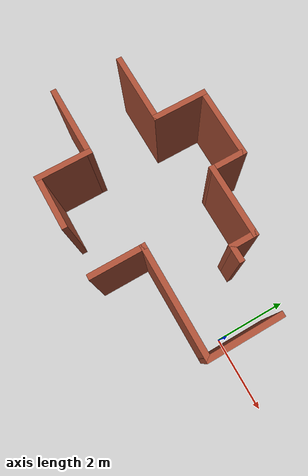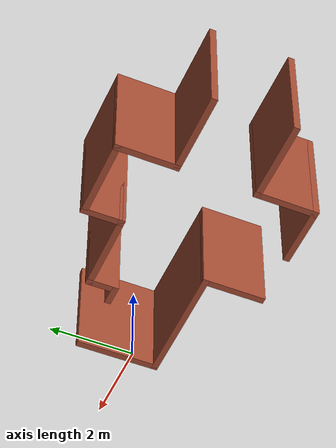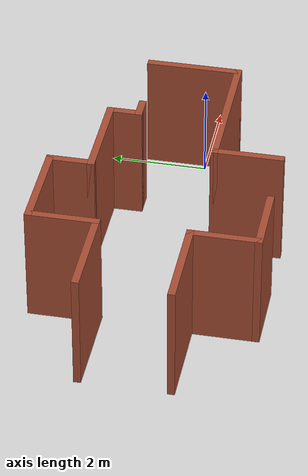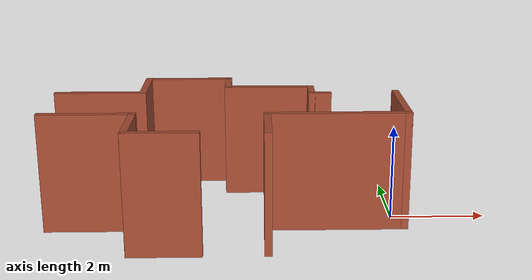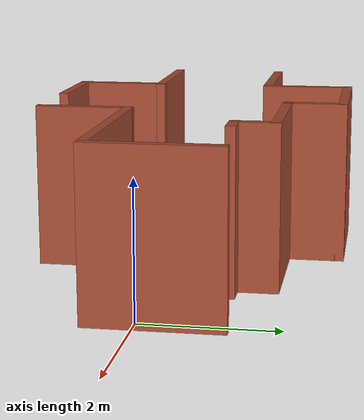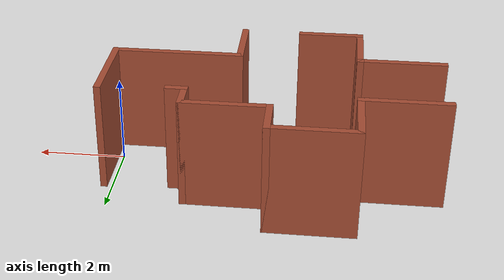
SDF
<?xml version='1.0'?>
<sdf version='1.7'>
  <model name='Test_building04'>
    <pose>-3.5103 0.279952 0 0 -0 0</pose>
    <link name='Wall_43'>
      <collision name='Wall_43_Collision'>
        <geometry>
          <box>
            <size>1.5 0.15 2.5</size>
          </box>
        </geometry>
        <pose>0 0 1.25 0 -0 0</pose>
      </collision>
      <visual name='Wall_43_Visual'>
        <pose>0 0 1.25 0 -0 0</pose>
        <geometry>
          <box>
            <size>1.5 0.15 2.5</size>
          </box>
        </geometry>
        <material>
          <script>
            <uri>file://media/materials/scripts/gazebo.material</uri>
            <name>Gazebo/Bricks</name>
          </script>
          <ambient>1 1 1 1</ambient>
        </material>
        <meta>
          <layer>0</layer>
        </meta>
      </visual>
      <pose>-1.175 -2.275 0 0 -0 0</pose>
    </link>
    <link name='Wall_45'>
      <collision name='Wall_45_Collision'>
        <geometry>
          <box>
            <size>1.5 0.15 2.5</size>
          </box>
        </geometry>
        <pose>0 0 1.25 0 -0 0</pose>
      </collision>
      <visual name='Wall_45_Visual'>
        <pose>0 0 1.25 0 -0 0</pose>
        <geometry>
          <box>
            <size>1.5 0.15 2.5</size>
          </box>
        </geometry>
        <material>
          <script>
            <uri>file://media/materials/scripts/gazebo.material</uri>
            <name>Gazebo/Bricks</name>
          </script>
          <ambient>1 1 1 1</ambient>
        </material>
        <meta>
          <layer>0</layer>
        </meta>
      </visual>
      <pose>-1.85 -1.6 0 0 -0 1.5708</pose>
    </link>
    <link name='Wall_47'>
      <collision name='Wall_47_Collision'>
        <geometry>
          <box>
            <size>1.5 0.15 2.5</size>
          </box>
        </geometry>
        <pose>0 0 1.25 0 -0 0</pose>
      </collision>
      <visual name='Wall_47_Visual'>
        <pose>0 0 1.25 0 -0 0</pose>
        <geometry>
          <box>
            <size>1.5 0.15 2.5</size>
          </box>
        </geometry>
        <material>
          <script>
            <uri>file://media/materials/scripts/gazebo.material</uri>
            <name>Gazebo/Bricks</name>
          </script>
          <ambient>1 1 1 1</ambient>
        </material>
        <meta>
          <layer>0</layer>
        </meta>
      </visual>
      <pose>-1.85 1.6 0 0 -0 1.5708</pose>
    </link>
    <link name='Wall_48'>
      <collision name='Wall_48_Collision'>
        <geometry>
          <box>
            <size>2 0.15 2.5</size>
          </box>
        </geometry>
        <pose>0 0 1.25 0 -0 0</pose>
      </collision>
      <visual name='Wall_48_Visual'>
        <pose>0 0 1.25 0 -0 0</pose>
        <geometry>
          <box>
            <size>2 0.15 2.5</size>
          </box>
        </geometry>
        <material>
          <script>
            <uri>file://media/materials/scripts/gazebo.material</uri>
            <name>Gazebo/Bricks</name>
          </script>
          <ambient>1 1 1 1</ambient>
        </material>
        <meta>
          <layer>0</layer>
        </meta>
      </visual>
      <pose>-0.925 2.275 0 0 -0 0</pose>
    </link>
    <link name='Wall_49'>
      <collision name='Wall_49_Collision'>
        <geometry>
          <box>
            <size>1 0.15 2.5</size>
          </box>
        </geometry>
        <pose>0 0 1.25 0 -0 0</pose>
      </collision>
      <visual name='Wall_49_Visual'>
        <pose>0 0 1.25 0 -0 0</pose>
        <geometry>
          <box>
            <size>1 0.15 2.5</size>
          </box>
        </geometry>
        <material>
          <script>
            <uri>file://media/materials/scripts/gazebo.material</uri>
            <name>Gazebo/Bricks</name>
          </script>
          <ambient>1 1 1 1</ambient>
        </material>
        <meta>
          <layer>0</layer>
        </meta>
      </visual>
      <pose>-0 1.85 0 0 -0 -1.5708</pose>
    </link>
    <link name='Wall_51'>
      <collision name='Wall_51_Collision'>
        <geometry>
          <box>
            <size>0.75 0.15 2.5</size>
          </box>
        </geometry>
        <pose>0 0 1.25 0 -0 0</pose>
      </collision>
      <visual name='Wall_51_Visual'>
        <pose>0 0 1.25 0 -0 0</pose>
        <geometry>
          <box>
            <size>0.75 0.15 2.5</size>
          </box>
        </geometry>
        <material>
          <script>
            <uri>file://media/materials/scripts/gazebo.material</uri>
            <name>Gazebo/Bricks</name>
          </script>
          <ambient>1 1 1 1</ambient>
        </material>
        <meta>
          <layer>0</layer>
        </meta>
      </visual>
      <pose>1.85 1.125 0 0 -0 -1.5708</pose>
    </link>
    <link name='Wall_54'>
      <collision name='Wall_54_Collision'>
        <geometry>
          <box>
            <size>1.5 0.15 2.5</size>
          </box>
        </geometry>
        <pose>0 0 1.25 0 -0 0</pose>
      </collision>
      <visual name='Wall_54_Visual'>
        <pose>0 0 1.25 0 -0 0</pose>
        <geometry>
          <box>
            <size>1.5 0.15 2.5</size>
          </box>
        </geometry>
        <material>
          <script>
            <uri>file://media/materials/scripts/gazebo.material</uri>
            <name>Gazebo/Bricks</name>
          </script>
          <ambient>1 1 1 1</ambient>
        </material>
        <meta>
          <layer>0</layer>
        </meta>
      </visual>
      <pose>0.85 -1.6 0 0 -0 1.5708</pose>
    </link>
    <link name='Wall_55'>
      <collision name='Wall_55_Collision'>
        <geometry>
          <box>
            <size>3 0.15 2.5</size>
          </box>
        </geometry>
        <pose>0 0 1.25 0 -0 0</pose>
      </collision>
      <visual name='Wall_55_Visual'>
        <pose>0 0 1.25 0 -0 0</pose>
        <geometry>
          <box>
            <size>3 0.15 2.5</size>
          </box>
        </geometry>
        <material>
          <script>
            <uri>file://media/materials/scripts/gazebo.material</uri>
            <name>Gazebo/Bricks</name>
          </script>
          <ambient>1 1 1 1</ambient>
        </material>
        <meta>
          <layer>0</layer>
        </meta>
      </visual>
      <pose>2.275 -0.925 0 0 -0 0</pose>
    </link>
    <link name='Wall_56'>
      <collision name='Wall_56_Collision'>
        <geometry>
          <box>
            <size>2 0.15 2.5</size>
          </box>
        </geometry>
        <pose>0 0 1.25 0 -0 0</pose>
      </collision>
      <visual name='Wall_56_Visual'>
        <pose>0 0 1.25 0 -0 0</pose>
        <geometry>
          <box>
            <size>2 0.15 2.5</size>
          </box>
        </geometry>
        <material>
          <script>
            <uri>file://media/materials/scripts/gazebo.material</uri>
            <name>Gazebo/Bricks</name>
          </script>
          <ambient>1 1 1 1</ambient>
        </material>
        <meta>
          <layer>0</layer>
        </meta>
      </visual>
      <pose>3.7 0 0 0 -0 1.5708</pose>
    </link>
    <link name='Wall_58'>
      <collision name='Wall_58_Collision'>
        <geometry>
          <box>
            <size>2 0.15 2.5</size>
          </box>
        </geometry>
        <pose>0 0 1.25 0 -0 0</pose>
      </collision>
      <visual name='Wall_58_Visual'>
        <pose>0 0 1.25 0 -0 0</pose>
        <geometry>
          <box>
            <size>2 0.15 2.5</size>
          </box>
        </geometry>
        <material>
          <script>
            <uri>file://media/materials/scripts/gazebo.material</uri>
            <name>Gazebo/Bricks</name>
          </script>
          <ambient>1 1 1 1</ambient>
        </material>
        <meta>
          <layer>0</layer>
        </meta>
      </visual>
      <pose>0.925 1.425 0 0 -0 0</pose>
    </link>
    <link name='Wall_60'>
      <collision name='Wall_60_Collision'>
        <geometry>
          <box>
            <size>0.5 0.15 2.5</size>
          </box>
        </geometry>
        <pose>0 0 1.25 0 -0 0</pose>
      </collision>
      <visual name='Wall_60_Visual'>
        <pose>0 0 1.25 0 -0 0</pose>
        <geometry>
          <box>
            <size>0.5 0.15 2.5</size>
          </box>
        </geometry>
        <material>
          <script>
            <uri>file://media/materials/scripts/gazebo.material</uri>
            <name>Gazebo/Bricks</name>
          </script>
          <ambient>1 1 1 1</ambient>
        </material>
        <meta>
          <layer>0</layer>
        </meta>
      </visual>
      <pose>2.025 0.825 0 0 -0 0</pose>
    </link>
    <link name='Wall_62'>
      <collision name='Wall_62_Collision'>
        <geometry>
          <box>
            <size>2 0.15 2.5</size>
          </box>
        </geometry>
        <pose>0 0 1.25 0 -0 0</pose>
      </collision>
      <visual name='Wall_62_Visual'>
        <pose>0 0 1.25 0 -0 0</pose>
        <geometry>
          <box>
            <size>2 0.15 2.5</size>
          </box>
        </geometry>
        <material>
          <script>
            <uri>file://media/materials/scripts/gazebo.material</uri>
            <name>Gazebo/Bricks</name>
          </script>
          <ambient>1 1 1 1</ambient>
        </material>
        <meta>
          <layer>0</layer>
        </meta>
      </visual>
      <pose>-2.775 0.925 0 0 -0 3.14159</pose>
    </link>
    <link name='Wall_64'>
      <collision name='Wall_64_Collision'>
        <geometry>
          <box>
            <size>2 0.15 2.5</size>
          </box>
        </geometry>
        <pose>0 0 1.25 0 -0 0</pose>
      </collision>
      <visual name='Wall_64_Visual'>
        <pose>0 0 1.25 0 -0 0</pose>
        <geometry>
          <box>
            <size>2 0.15 2.5</size>
          </box>
        </geometry>
        <material>
          <script>
            <uri>file://media/materials/scripts/gazebo.material</uri>
            <name>Gazebo/Bricks</name>
          </script>
          <ambient>1 1 1 1</ambient>
        </material>
        <meta>
          <layer>0</layer>
        </meta>
      </visual>
      <pose>-2.775 -0.925 0 0 -0 3.14159</pose>
    </link>
    <static>1</static>
  </model>
</sdf>
